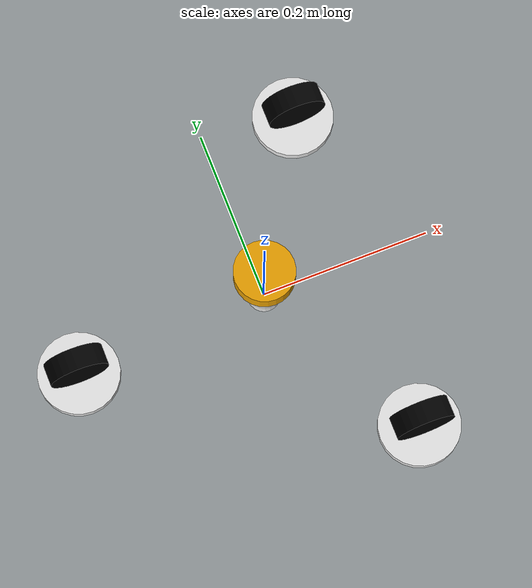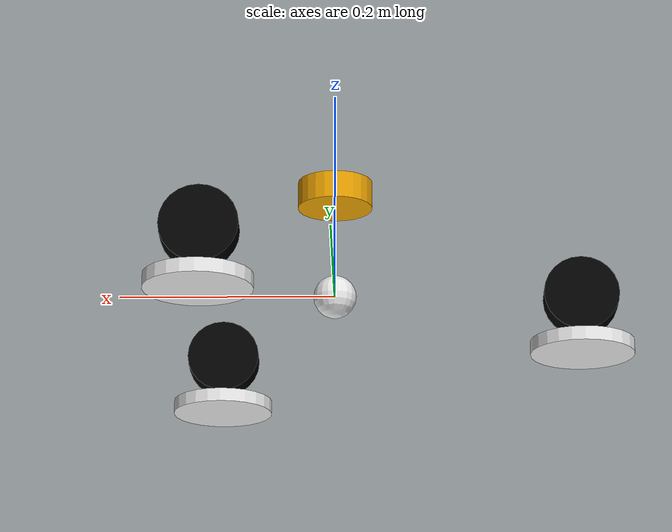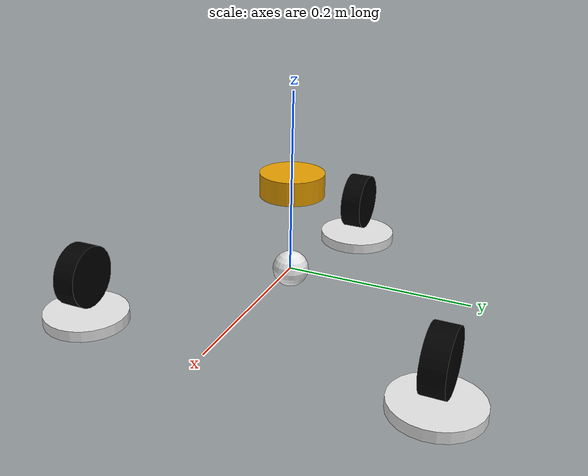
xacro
<?xml version="1.0"?>
<robot name="ghost1" xmlns:xacro="http://ros.org/wiki/xacro">

    <!-- Import Primary Robot URDF -->
    <xacro:include filename="$(find ghost_sim)/urdf/ghost1_sim_base.xacro"/>

    <!-- Gazebo Plugins -->
    <gazebo>
        <!-- Motor Models -->
        <xacro:v5_motor_macro joint_name="steering_left" link_name="mod_left" gear_ratio="1.0"></xacro:v5_motor_macro>
        <xacro:v5_motor_macro joint_name="steering_right" link_name="mod_right" gear_ratio="1.0"></xacro:v5_motor_macro>
        <xacro:v5_motor_macro joint_name="steering_back" link_name="mod_back" gear_ratio="1.0"></xacro:v5_motor_macro>
        <xacro:v5_motor_macro joint_name="driveshaft_left" link_name="wheel_left" gear_ratio="6.0"></xacro:v5_motor_macro>
        <xacro:v5_motor_macro joint_name="driveshaft_right" link_name="wheel_right" gear_ratio="6.0"></xacro:v5_motor_macro>
        <xacro:v5_motor_macro joint_name="driveshaft_back" link_name="wheel_back" gear_ratio="6.0"></xacro:v5_motor_macro>
    </gazebo>
</robot>

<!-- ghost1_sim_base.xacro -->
<robot name="ghost1" xmlns:xacro="http://ros.org/wiki/xacro">

    <xacro:include filename="$(find ghost_sim)/urdf/macros/actuator_macros.xacro"/>
    <xacro:include filename="$(find ghost_sim)/urdf/macros/sensor_macros.xacro"/>

    <!-- Import Primary Robot URDF -->
    <xacro:include filename="$(find ghost_description)/urdf/ghost1.xacro"/>

    <!-- Add Sensors -->
    <xacro:lidar_macro link_name="lidar_link" topic_name="scan"></xacro:lidar_macro>

    <!-- Joint State Publisher -->
    <gazebo>
        <plugin name="gazebo_ros_joint_state_publisher" filename="libgazebo_ros_joint_state_publisher.so">
            <update_rate>100</update_rate>
            <joint_name>steering_left</joint_name>
            <joint_name>steering_right</joint_name>
            <joint_name>steering_back</joint_name>
            <joint_name>driveshaft_left</joint_name>
            <joint_name>driveshaft_right</joint_name>
            <joint_name>driveshaft_back</joint_name>
        </plugin>

        <plugin name="v5_robot_plugin" filename="libv5_robot_plugin.so">
            <joint_names>
                steering_left
                steering_right
                steering_back
                driveshaft_left
                driveshaft_right
                driveshaft_back
            </joint_names>
            <!-- Motor names must be formatted in this manner in order to index actuator jacobian -->
            <motor_names>
                DRIVE_LEFT_FRONT_LEFT_MOTOR
                DRIVE_LEFT_FRONT_RIGHT_MOTOR
                DRIVE_LEFT_BACK_LEFT_MOTOR
                DRIVE_LEFT_BACK_RIGHT_MOTOR
                DRIVE_RIGHT_FRONT_LEFT_MOTOR
                DRIVE_RIGHT_FRONT_RIGHT_MOTOR
                DRIVE_RIGHT_BACK_LEFT_MOTOR
                DRIVE_RIGHT_BACK_RIGHT_MOTOR
            </motor_names>

            <encoder_names>
                STEERING_FRONT_LEFT_ENCODER
                STEERING_FRONT_RIGHT_ENCODER
                STEERING_BACK_LEFT_ENCODER
                STEERING_BACK_RIGHT_ENCODER
            </encoder_names>

            <!-- System Jacobians -->
                <!-- To describe the relationship between motors/encoders and robot joints in a universal way, we encode them -->
                <!-- as matrices which relate the vector of motor/encoder speeds to joint speeds. We can also take a pseudo-inverse -->
                <!-- to relate torques. Examples are included below. -->

                <!-- Example 1 -->
                    <!--         motor_1 motor_2    -->
                    <!-- joint_1    1       0       -->
                    <!-- joint_2    0       1       -->

                    <!-- Both joints are directly driven by their respective motors, and their velocites and torques match. -->

                <!-- Example 2 -->
                <!--          motor_1   motor_2  motor_3    -->
                    <!-- joint_1    0.5       0.5       0       -->
                    <!-- joint_2     0         0        2       -->

                    <!-- joint_1 is driven by motor_1 and motor_2. It moves at the average of the two motor velocites, and with -->
                    <!-- the torque of both motors added together. This represents two motors attached to the same system -->
                    <!-- joint_2 moves twice as fast as motor_3, representing an external gear reduction on the motor -->

                <!-- In general, describe the way the velocities are related and the torque relationship will be extracted inside the plugin -->

            <!-- This matrix describes the relationship between motor velocities and joint velocities -->
            <!-- Width = # Motors, Height = # Joints -->
            <actuator_jacobian>
            0.5  0.5    0    0    0    0    0    0
              0    0  0.5  0.5    0    0    0    0
              0    0    0    0  0.5  0.5    0    0
              0    0    0    0    0    0  0.5  0.5
            0.5  0.5    0    0    0    0    0    0
              0    0  0.5  0.5    0    0    0    0
            </actuator_jacobian>

            <!-- This matrix describes the relationship between the encoders and the joints -->
            <!-- Width = # Encoders, Height = # Joints -->
            <sensor_jacobian>
            1 0 0 0
            0 1 0 0
            0 0 1 0
            0 0 0 1
            0 0 0 0
            0 0 0 0
            </sensor_jacobian>
        </plugin>
    </gazebo>

        <!-- Gazebo Plugins -->
    <gazebo>
        <!-- Motor Models -->
        <!-- 0.05 Steering -->

    </gazebo>
</robot>

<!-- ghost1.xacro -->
<robot name="ghost1" xmlns:xacro="http://ros.org/wiki/xacro">

    <xacro:include filename="$(find ghost_description)/urdf/swerve_macros.xacro"/>

    <xacro:property name="l_wheel" value="0.2286"/> <!-- 9" center to wheel modules-->
    <xacro:property name="r_wheel" value="0.034925"/> <!-- 1.375" wheel radius-->
    <xacro:property name="width_wheel" value="0.0254"/> <!-- 1" wheel width-->
    <xacro:property name="com_radius" value="0.02"/>
    <xacro:property name="d2r" value="${3.14159/180}"/>

    <link name="base_link">
        <visual>
        <origin xyz="0 0 0" rpy="0 0 0"/>
        <geometry>
            <sphere radius="${com_radius}"/>
        </geometry>
        <material name="white"/>
        </visual>

        <!--Inertia estimated for solid cylinder of radius 9" and height 3" with mass 7kg-->
        <inertial>
            <origin xyz="0 0 0" rpy="0 0 0"/>
            <mass value="10"/>
            <inertia
                ixx="0.094839" ixy="0.0" ixz="0.0"
                iyy="0.094839" iyz="0.0"
                izz="0.182903"/>
        </inertial>

        <gazebo>
            <maxVel>3.0</maxVel>
        </gazebo>
    </link>

    <link name="base_footprint">
        <inertial>
            <origin xyz="0 0 0" rpy="0 0 0"/>
            <mass value="0.00001"/>
            <inertia
                ixx="0.00001" ixy="0.0" ixz="0.0"
                iyy="0.00001" iyz="0.0"
                izz="0.00001"/>
        </inertial>
    </link>

    <joint name="base_footprint_joint" type="fixed">
        <parent link="base_link"/>
        <child link="base_footprint"/>
        <origin xyz="0 0 ${- r_wheel}" rpy="0 0 0"/>
        <axis xyz="0 0 1"/>
    </joint>

    <!-- Steering Modules -->
    <xacro:steering_macro id="left"></xacro:steering_macro>
    <xacro:steering_macro id="right"></xacro:steering_macro>
    <xacro:steering_macro id="back"></xacro:steering_macro>

    <!-- Wheel Modules -->
    <xacro:wheel_macro id="left" r_wheel="${r_wheel}" width_wheel="${width_wheel}" collision_factor="8"></xacro:wheel_macro>
    <xacro:wheel_macro id="right" r_wheel="${r_wheel}" width_wheel="${width_wheel}" collision_factor="8"></xacro:wheel_macro>
    <xacro:wheel_macro id="back" r_wheel="${r_wheel}" width_wheel="${width_wheel}" collision_factor="8"></xacro:wheel_macro>

    <!-- Joints -->
    <joint name="steering_left" type="continuous">
        <parent link="base_link"/>
        <child link="mod_left"/>
        <origin xyz="${l_wheel/2} ${l_wheel*0.866} 0" rpy="0 0 0"/>
        <axis xyz="0 0 1"/>
    </joint>

    <joint name="steering_right" type="continuous">
        <parent link="base_link"/>
        <child link="mod_right"/>
        <origin xyz="${l_wheel/2} ${-l_wheel*0.866} 0" rpy="0 0 0"/>
        <axis xyz="0 0 1"/>
    </joint>

    <joint name="steering_back" type="continuous">
        <parent link="base_link"/>
        <child link="mod_back"/>
        <origin xyz="${-l_wheel} 0 0" rpy="0 0 0"/>
        <axis xyz="0 0 1"/>
    </joint>

    <joint name="driveshaft_left" type="continuous">
        <parent link="mod_left"/>
        <child link="wheel_left"/>
        <origin xyz="0 0 0" rpy="${90*d2r} 0 0"/>
        <axis xyz="0 0 1"/>
    </joint>

    <joint name="driveshaft_right" type="continuous">
        <parent link="mod_right"/>
        <child link="wheel_right"/>
        <origin xyz="0 0 0" rpy="${90*d2r} 0 0"/>
        <axis xyz="0 0 1"/>
    </joint>

    <joint name="driveshaft_back" type="continuous">
        <parent link="mod_back"/>
        <child link="wheel_back"/>
        <origin xyz="0 0 0" rpy="${90*d2r} 0 0"/>
        <axis xyz="0 0 1"/>
    </joint>

    <!-- Sensors -->
    <link name="lidar_link">
        <inertial>
            <origin xyz="0.0 0 0.0" rpy="0 0 0"/>
            <mass value="0.125"/>
            <inertia ixx="0.001"  ixy="0"  ixz="0" iyy="0.001" iyz="0" izz="0.001" />
        </inertial>

        <visual>
            <origin xyz="0 0 0" rpy="0 0 0"/>
            <geometry>
            <cylinder radius="${0.06985/2}" length="0.0254"/>
            </geometry>
        </visual>
    </link>

    <joint name="lidar_joint" type="fixed">
        <parent link="base_link"/>
        <child link="lidar_link"/>
        <origin xyz="0 0 0.1" rpy="0 0 0"/>
    </joint>

    <link name="camera_base_link">
        <inertial>
            <origin xyz="0.0 0 0.0" rpy="0 0 0"/>
            <mass value="0.125"/>
            <inertia ixx="0.001"  ixy="0.001"  ixz="0.001" iyy="0.001" iyz="0.001" izz="0.001" />
        </inertial>
    </link>

    <joint name="camera_base_joint" type="fixed">
        <parent link="base_link"/>
        <child link="camera_base_link"/>
        <origin xyz="${l_wheel/2} 0 0.33" rpy="0 0 0"/>
    </joint>

    <link name="camera_view_link">
        <inertial>
            <origin xyz="0.0 0 0.0" rpy="0 0 0"/>
            <mass value="0.125"/>
            <inertia ixx="0.001"  ixy="0.001"  ixz="0.001" iyy="0.001" iyz="0.001" izz="0.001" />
        </inertial>
    </link>

    <joint name="camera_view_joint" type="fixed">
        <parent link="camera_base_link"/>
        <child link="camera_view_link"/>
        <origin xyz="0 0 0" rpy="0 0.7853975 0"/>
    </joint>
</robot>

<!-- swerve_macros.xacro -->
<robot xmlns:xacro="http://www.ros.org/wiki/xacro">
    <!-- Steering Module Macro -->
    <xacro:macro name="steering_macro" params="id">
    <link name="mod_${id}">
        <inertial>
            <origin xyz="0 0 0" rpy="0 0 0"/>
            <mass value="0.4545"/>
            <inertia
                ixx="0.000975" ixy="0.0" ixz="0.0"
                iyy="0.000975" iyz="0.0"
                izz="0.001902"/>
        </inertial>
        <visual>
            <origin xyz="0 0 -0.05" rpy="0 0 0"/>
            <geometry>
                <cylinder radius="0.04826" length="0.0127"/>
            </geometry>
            <material name="silver">
                <color rgba="0.9 0.9 0.9 1.0"/>
            </material>
        </visual>
    </link>
    </xacro:macro>

    <!-- Wheel Macro -->
    <xacro:macro name="wheel_macro" params="id r_wheel width_wheel collision_factor">
    <link name="wheel_${id}">
            <visual>
                <geometry>
                    <cylinder radius="${r_wheel}" length="${width_wheel}"/>
                </geometry>
                <material name="black">
                    <color rgba="0 0 0 1.0"/>
                </material>
            </visual>

            <collision>
                <origin xyz="0 0 0" rpy="0 0 0"/>
                <geometry>
                    <cylinder radius="${r_wheel}" length="${width_wheel/collision_factor}"/>
                </geometry>
            </collision>

            <!--Inertia estimated for solid cylinder of radius 2.5" and height 1" with mass 1 lb-->
            <inertial>
                <origin xyz="0 0 0" rpy="0 0 0"/>
                <mass value="0.4545"/>
                <inertia
                    ixx="0.000482" ixy="0.0" ixz="0.0"
                    iyy="0.000482" iyz="0.0"
                    izz="0.000914"/>
            </inertial>
    </link>

    <gazebo reference="wheel_${id}">
        <collision>
            <origin xyz="0 0 0" rpy="0 0 0"/>
            <geometry>
                <cylinder>
                    <radius>${r_wheel}</radius>
                    <length>${width_wheel/collision_factor}</length>
                </cylinder>
            </geometry>

            <surface>
                <friction>
                    <torsional>
                        <coefficient>1.0</coefficient>
                        <patch_radius>0.01</patch_radius>
                    </torsional>
                </friction>
            </surface>
        </collision>

        <material>Gazebo/White</material>
    </gazebo>
    </xacro:macro>
</robot>
